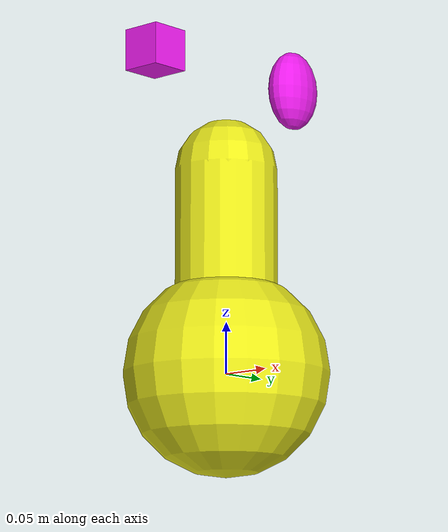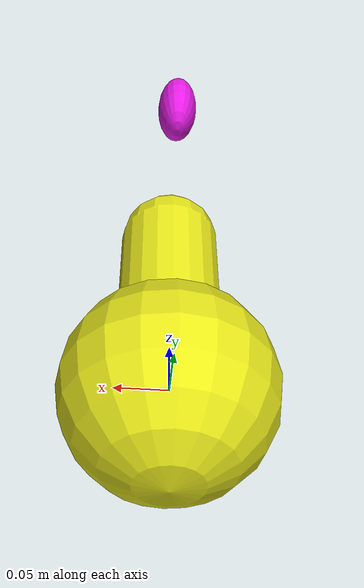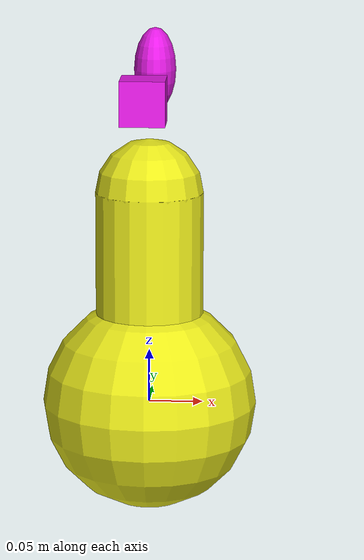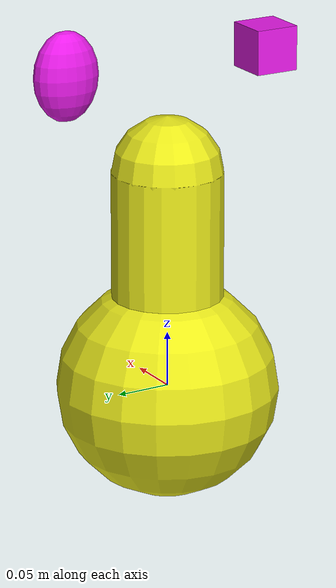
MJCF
<mujoco>
   <worldbody>
   <!-- check how do bodies intersect with each other
   view in the view_test.py file  -->
      <body pos="0 0 0">
         <geom type="sphere" size=".1" rgba=".9 .9 .1 1"/>
         <geom type="capsule" pos="0 0 .1" size=".05 .1" rgba=".9 .9 .1 1"/>
         <site type="box" pos="0 -.1 .3" size=".02 .02 .02" rgba=".9 .1 .9 1"/>
         <site type="ellipsoid" pos="0 .1 .3" size=".02 .03 .04" rgba=".9 .1 .9 1"/>
      </body>
   </worldbody>
</mujoco>
